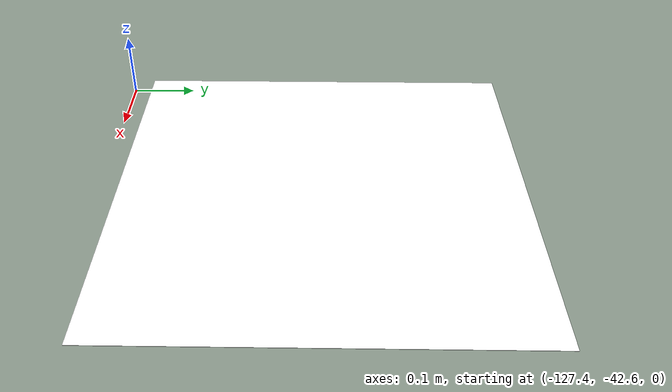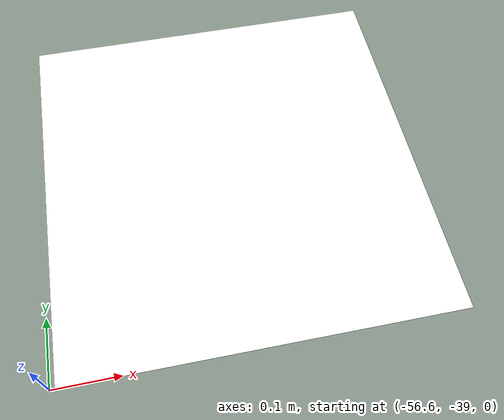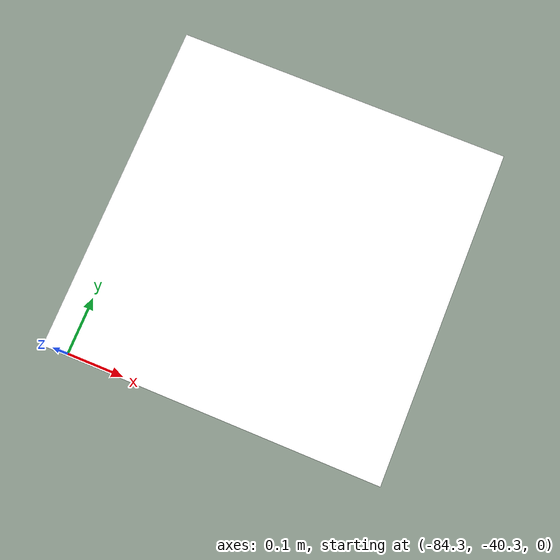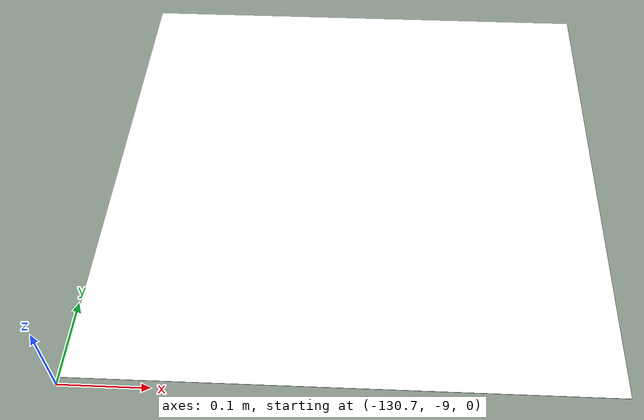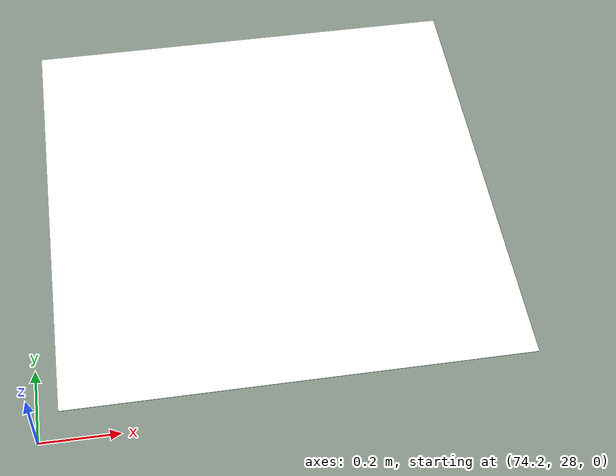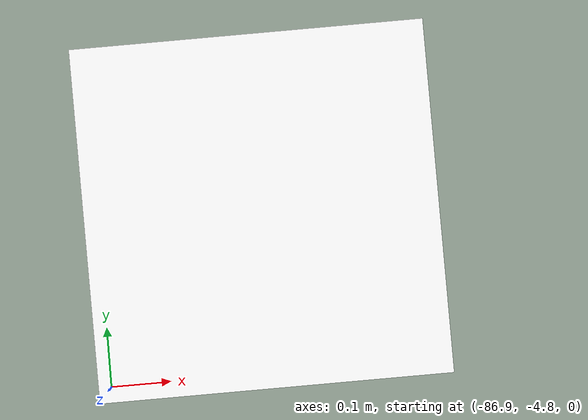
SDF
<sdf version="1.10">
 <world name="map">
  <physics name="1ms" type="ignore">
   <max_step_size>0.001</max_step_size>
   <real_time_factor>1</real_time_factor>
   <real_time_update_rate>1000</real_time_update_rate>
  </physics>
  <plugin name="gz::sim::systems::Physics" filename="gz-sim-physics-system"/>
  <plugin name="gz::sim::systems::Sensors" filename="gz-sim-sensors-system">
   <render_engine>ogre2</render_engine>
  </plugin>
  <plugin name="gz::sim::systems::UserCommands" filename="gz-sim-user-commands-system"/>
  <plugin name="gz::sim::systems::SceneBroadcaster" filename="gz-sim-scene-broadcaster-system"/>
  <plugin name="gz::sim::systems::AirPressure" filename="gz-sim-air-pressure-system"/>
  <plugin name="gz::sim::systems::AirSpeed" filename="gz-sim-air-speed-system"/>
  <plugin name="gz::sim::systems::Altimeter" filename="gz-sim-altimeter-system"/>
  <plugin name="gz::sim::systems::Imu" filename="gz-sim-imu-system"/>
  <plugin name="gz::sim::systems::Magnetometer" filename="gz-sim-magnetometer-system"/>
  <plugin name="gz::sim::systems::NavSat" filename="gz-sim-navsat-system"/>
  <scene>
   <ambient>1 1 1 1</ambient>
   <background>0.800000012 0.800000012 0.800000012 1</background>
   <shadows>true</shadows>
  </scene>
  <spherical_coordinates>
   <latitude_deg>-35.3632621</latitude_deg>
   <longitude_deg>149.1652374</longitude_deg>
   <elevation>10</elevation>
   <heading_deg>0</heading_deg>
   <surface_model>EARTH_WGS84</surface_model>
  </spherical_coordinates>
  <gravity>0 0 -9.8000000000000007</gravity>
  <magnetic_field>5.5644999999999998e-06 2.2875799999999999e-05 -4.2388400000000002e-05</magnetic_field>
  <atmosphere type="adiabatic"/>
  <include>
   <uri>model://target_marker</uri>
   <name>target_marker_0</name>
   <pose>61.356536537976538 -7.1181951619470372 0 0 0 0</pose>
  </include>
  <include>
   <uri>model://GCP_Blank</uri>
   <name>GCP_Blank</name>
   <pose>74.851156492500721 28.681105382308701 0 0 0 0</pose>
  </include>
  <include>
   <uri>model://GCP_0</uri>
   <name>GCP_0</name>
   <pose>-56.292955643165968 -38.700578176209213 0 0 0 0</pose>
  </include>
  <include>
   <uri>model://GCP_1</uri>
   <name>GCP_1</name>
   <pose>-57.998166730861399 -2.1382600372673153 0 0 0 0</pose>
  </include>
  <include>
   <uri>model://GCP_2</uri>
   <name>GCP_2</name>
   <pose>-84.044393298500964 -40.003326207974759 0 0 0 0</pose>
  </include>
  <include>
   <uri>model://GCP_3</uri>
   <name>GCP_3</name>
   <pose>-86.622867619370481 -4.5268080291212698 0 0 0 0</pose>
  </include>
  <include>
   <uri>model://GCP_4</uri>
   <name>GCP_4</name>
   <pose>-105.65649518970994 -41.539220217677865 0 0 0 0</pose>
  </include>
  <include>
   <uri>model://GCP_5</uri>
   <name>GCP_5</name>
   <pose>-108.81478448496834 -7.2487212712861631 0 0 0 0</pose>
  </include>
  <include>
   <uri>model://GCP_6</uri>
   <name>GCP_6</name>
   <pose>-127.13371550113604 -42.273413424503431 0 0 0 0</pose>
  </include>
  <include>
   <uri>model://GCP_7</uri>
   <name>GCP_7</name>
   <pose>-130.39823620683799 -8.6915103798414659 0 0 0 0</pose>
  </include>
  <light name="sun" type="directional">
   <pose>0 0 10 0 0 0</pose>
   <intensity>1</intensity>
   <direction>-0.5 0.10000000000000001 -0.90000000000000002</direction>
   <diffuse>0.800000012 0.800000012 0.800000012 1</diffuse>
   <specular>0.800000012 0.800000012 0.800000012 1</specular>
   <attenuation>
    <range>1000</range>
    <linear>0.01</linear>
    <constant>0.90000000000000002</constant>
    <quadratic>0.001</quadratic>
   </attenuation>
   <spot><inner_angle>0</inner_angle><outer_angle>0</outer_angle><falloff>0</falloff></spot>
  </light>
 </world>
</sdf>

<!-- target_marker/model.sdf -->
<sdf version="1.9">
  <model name="target_marker">
    <static>true</static>

    <!-- default pose if you insert from GUI -->
    <pose>0 0 0 0 0 0</pose>

    <link name="link">

      <visual name="target_visual">
  <geometry>
    <plane>
      <normal>0 0 1</normal>
      <size>5 5</size>
    </plane>
  </geometry>

  <material>
    <double_sided>true</double_sided>

    <ambient>1 1 1 1</ambient>
    <diffuse>1 1 1 1</diffuse>

    <pbr>
      <metal>
        <albedo_map>model://target_marker/materials/textures/target.png</albedo_map>
        <roughness>1.0</roughness>
        <metalness>0.0</metalness>
      </metal>
    </pbr>
  </material>

  <cast_shadows>false</cast_shadows>
</visual>

    </link>
  </model>
</sdf>

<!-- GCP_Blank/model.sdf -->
<sdf version="1.9">
  <model name="GCP_Blank">
    <static>true</static>

    <!-- default pose if you insert from GUI -->
    <pose>0 0 0 0 0 0</pose>

    <link name="link">

      <visual name="target_visual">
  <geometry>
    <plane>
      <normal>0 0 1</normal>
      <size>1.2 1.2</size>
    </plane>
  </geometry>

  <material>
    <double_sided>true</double_sided>

    <ambient>1 1 1 1</ambient>
    <diffuse>1 1 1 1</diffuse>

    <pbr>
      <metal>
        <albedo_map>model://GCP_Blank/materials/textures/GCP.png</albedo_map>
        <roughness>1.0</roughness>
        <metalness>0.0</metalness>
      </metal>
    </pbr>
  </material>

  <cast_shadows>false</cast_shadows>
</visual>

    </link>
  </model>
</sdf>

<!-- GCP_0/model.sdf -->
<sdf version="1.9">
  <model name="GCP_0">
    <static>true</static>

    <!-- default pose if you insert from GUI -->
    <pose>0 0 0 0 0 0</pose>

    <link name="link">

      <visual name="target_visual">
  <geometry>
    <plane>
      <normal>0 0 1</normal>
      <size>0.6 0.6</size>
    </plane>
  </geometry>

  <material>
    <double_sided>true</double_sided>

    <ambient>1 1 1 1</ambient>
    <diffuse>1 1 1 1</diffuse>

    <pbr>
      <metal>
        <albedo_map>model://GCP_0/materials/textures/GCP0.png</albedo_map>
        <roughness>1.0</roughness>
        <metalness>0.0</metalness>
      </metal>
    </pbr>
  </material>

  <cast_shadows>false</cast_shadows>
</visual>

    </link>
  </model>
</sdf>

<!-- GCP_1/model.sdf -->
<sdf version="1.9">
  <model name="GCP_1">
    <static>true</static>

    <!-- default pose if you insert from GUI -->
    <pose>0 0 0 0 0 0</pose>

    <link name="link">

      <visual name="target_visual">
  <geometry>
    <plane>
      <normal>0 0 1</normal>
      <size>0.6 0.6</size>
    </plane>
  </geometry>

  <material>
    <double_sided>true</double_sided>

    <ambient>1 1 1 1</ambient>
    <diffuse>1 1 1 1</diffuse>

    <pbr>
      <metal>
        <albedo_map>model://GCP_1/materials/textures/GCP1.png</albedo_map>
        <roughness>1.0</roughness>
        <metalness>0.0</metalness>
      </metal>
    </pbr>
  </material>

  <cast_shadows>false</cast_shadows>
</visual>

    </link>
  </model>
</sdf>

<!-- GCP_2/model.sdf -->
<sdf version="1.9">
  <model name="GCP_2">
    <static>true</static>

    <!-- default pose if you insert from GUI -->
    <pose>0 0 0 0 0 0</pose>

    <link name="link">

      <visual name="target_visual">
  <geometry>
    <plane>
      <normal>0 0 1</normal>
      <size>0.6 0.6</size>
    </plane>
  </geometry>

  <material>
    <double_sided>true</double_sided>

    <ambient>1 1 1 1</ambient>
    <diffuse>1 1 1 1</diffuse>

    <pbr>
      <metal>
        <albedo_map>model://GCP_2/materials/textures/GCP2.png</albedo_map>
        <roughness>1.0</roughness>
        <metalness>0.0</metalness>
      </metal>
    </pbr>
  </material>

  <cast_shadows>false</cast_shadows>
</visual>

    </link>
  </model>
</sdf>

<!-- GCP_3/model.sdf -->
<sdf version="1.9">
  <model name="GCP_3">
    <static>true</static>

    <!-- default pose if you insert from GUI -->
    <pose>0 0 0 0 0 0</pose>

    <link name="link">

      <visual name="target_visual">
  <geometry>
    <plane>
      <normal>0 0 1</normal>
      <size>0.6 0.6</size>
    </plane>
  </geometry>

  <material>
    <double_sided>true</double_sided>

    <ambient>1 1 1 1</ambient>
    <diffuse>1 1 1 1</diffuse>

    <pbr>
      <metal>
        <albedo_map>model://GCP_3/materials/textures/GCP3.png</albedo_map>
        <roughness>1.0</roughness>
        <metalness>0.0</metalness>
      </metal>
    </pbr>
  </material>

  <cast_shadows>false</cast_shadows>
</visual>

    </link>
  </model>
</sdf>

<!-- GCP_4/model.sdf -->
<sdf version="1.9">
  <model name="GCP_4">
    <static>true</static>

    <!-- default pose if you insert from GUI -->
    <pose>0 0 0 0 0 0</pose>

    <link name="link">

      <visual name="target_visual">
  <geometry>
    <plane>
      <normal>0 0 1</normal>
      <size>0.6 0.6</size>
    </plane>
  </geometry>

  <material>
    <double_sided>true</double_sided>

    <ambient>1 1 1 1</ambient>
    <diffuse>1 1 1 1</diffuse>

    <pbr>
      <metal>
        <albedo_map>model://GCP_4/materials/textures/GCP4.png</albedo_map>
        <roughness>1.0</roughness>
        <metalness>0.0</metalness>
      </metal>
    </pbr>
  </material>

  <cast_shadows>false</cast_shadows>
</visual>

    </link>
  </model>
</sdf>

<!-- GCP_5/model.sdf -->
<sdf version="1.9">
  <model name="GCP_5">
    <static>true</static>

    <!-- default pose if you insert from GUI -->
    <pose>0 0 0 0 0 0</pose>

    <link name="link">

      <visual name="target_visual">
  <geometry>
    <plane>
      <normal>0 0 1</normal>
      <size>0.6 0.6</size>
    </plane>
  </geometry>

  <material>
    <double_sided>true</double_sided>

    <ambient>1 1 1 1</ambient>
    <diffuse>1 1 1 1</diffuse>

    <pbr>
      <metal>
        <albedo_map>model://GCP_5/materials/textures/GCP5.png</albedo_map>
        <roughness>1.0</roughness>
        <metalness>0.0</metalness>
      </metal>
    </pbr>
  </material>

  <cast_shadows>false</cast_shadows>
</visual>

    </link>
  </model>
</sdf>

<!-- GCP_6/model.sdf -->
<sdf version="1.9">
  <model name="GCP_6">
    <static>true</static>

    <!-- default pose if you insert from GUI -->
    <pose>0 0 0 0 0 0</pose>

    <link name="link">

      <visual name="target_visual">
  <geometry>
    <plane>
      <normal>0 0 1</normal>
      <size>0.6 0.6</size>
    </plane>
  </geometry>

  <material>
    <double_sided>true</double_sided>

    <ambient>1 1 1 1</ambient>
    <diffuse>1 1 1 1</diffuse>

    <pbr>
      <metal>
        <albedo_map>model://GCP_6/materials/textures/GCP6.png</albedo_map>
        <roughness>1.0</roughness>
        <metalness>0.0</metalness>
      </metal>
    </pbr>
  </material>

  <cast_shadows>false</cast_shadows>
</visual>

    </link>
  </model>
</sdf>

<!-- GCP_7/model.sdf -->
<sdf version="1.9">
  <model name="GCP_7">
    <static>true</static>

    <!-- default pose if you insert from GUI -->
    <pose>0 0 0 0 0 0</pose>

    <link name="link">

      <visual name="target_visual">
  <geometry>
    <plane>
      <normal>0 0 1</normal>
      <size>0.6 0.6</size>
    </plane>
  </geometry>

  <material>
    <double_sided>true</double_sided>

    <ambient>1 1 1 1</ambient>
    <diffuse>1 1 1 1</diffuse>

    <pbr>
      <metal>
        <albedo_map>model://GCP_7/materials/textures/GCP7.png</albedo_map>
        <roughness>1.0</roughness>
        <metalness>0.0</metalness>
      </metal>
    </pbr>
  </material>

  <cast_shadows>false</cast_shadows>
</visual>

    </link>
  </model>
</sdf>
